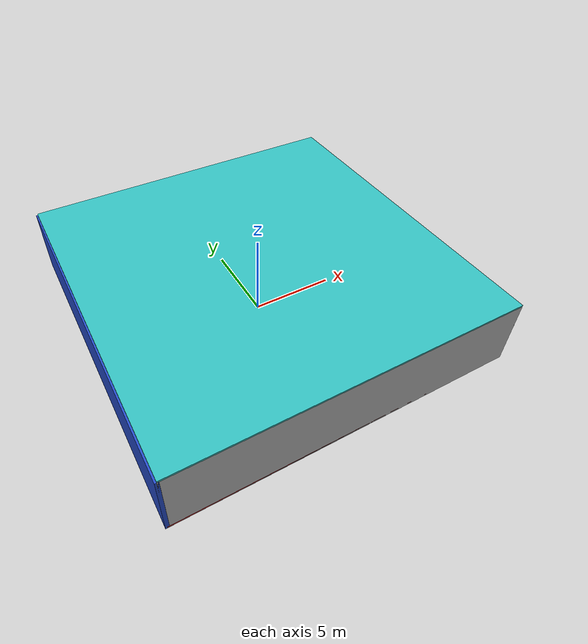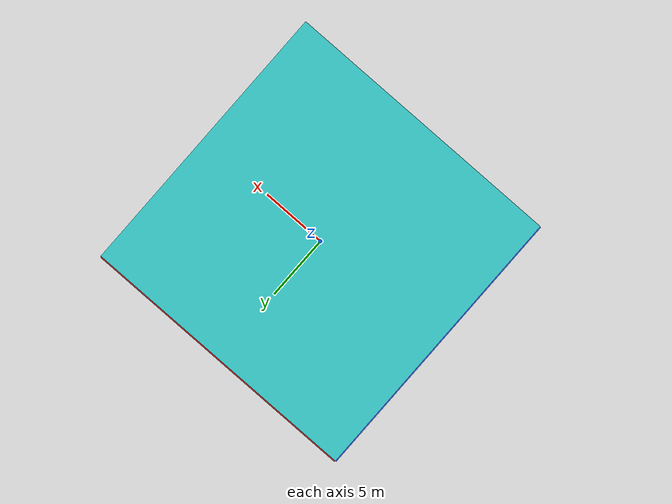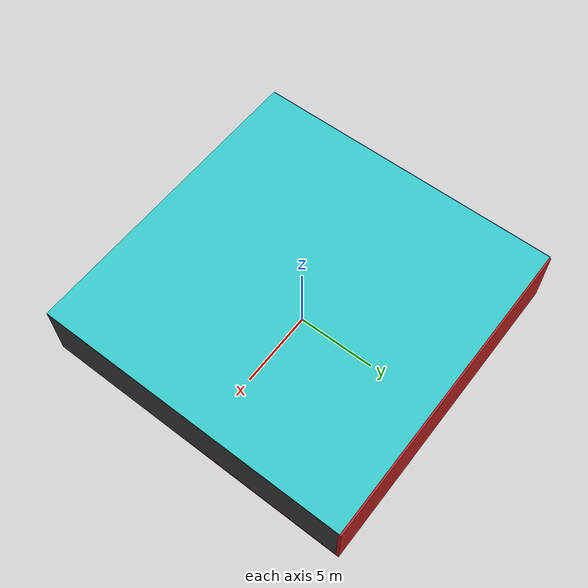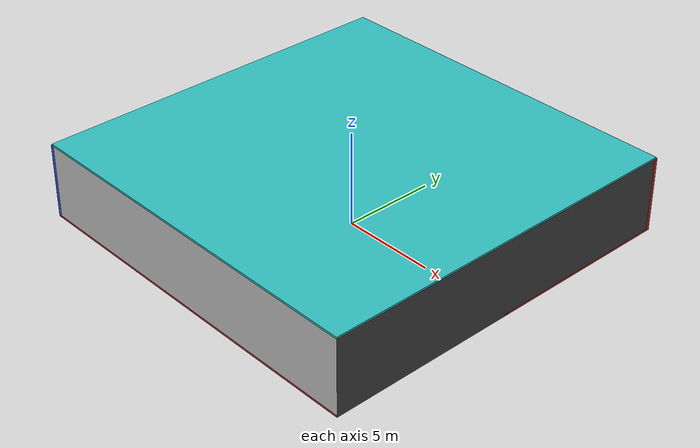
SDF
<sdf version="1.4">
 <world name="default">
  <physics type="ode">
   <max_step_size>0.001</max_step_size>
   <real_time_factor>1</real_time_factor>
   <real_time_update_rate>1000</real_time_update_rate>
   <gravity>0 0 -9.8</gravity>
  </physics>
  <scene><ambient>0.4 0.4 0.4 1</ambient><background>0.7 0.7 0.7 1</background><shadows>1</shadows></scene>
  <model name="Surrounding">
   <static>1</static>
   <link name="Ceiling">
    <collision name="Ceiling_Collision"><geometry><box><size>20 20 0.1</size></box></geometry></collision>
    <visual name="Ceiling_Visual">
     <geometry><box><size>20 20 0.1</size></box></geometry>
     <material>
      <script>
       <uri>file://media/materials/scripts/gazebo.material</uri>
       <name>Gazebo/TurquoiseGlowOutline</name>
      </script>
     </material>
    </visual>
    <pose>0 0 4.05 0 0 0</pose>
   </link>
   <link name="Wall_South">
    <collision name="Wall_South_Collision">
     <geometry><box><size>20 0 4</size></box></geometry>
     <pose>0 0 2 0 -0 0</pose>
    </collision>
    <visual name="Wall_South_Visual">
     <pose>0 0 2 0 -0 0</pose>
     <geometry><box><size>20 0 4</size></box></geometry>
     <material>
      <script><uri>file://media/materials/scripts/gazebo.material</uri><name>Gazebo/LightOff</name></script>
     </material>
    </visual>
    <velocity_decay><linear>0</linear><angular>0</angular></velocity_decay>
    <pose>0 -10 0 0 -0 0</pose>
   </link>
   <link name="Wall_East">
    <collision name="Wall_21_Collision">
     <geometry><box><size>20 0 4</size></box></geometry>
     <pose>0 0 2 0 -0 0</pose>
    </collision>
    <visual name="Wall_21_Visual">
     <pose>0 0 2 0 -0 0</pose>
     <geometry><box><size>20 0 4</size></box></geometry>
     <material>
      <script><uri>file://media/materials/scripts/gazebo.material</uri><name>Gazebo/DarkGrey</name></script>
     </material>
    </visual>
    <velocity_decay><linear>0</linear><angular>0</angular></velocity_decay>
    <pose>10 0 0 0 -0 1.5708</pose>
   </link>
   <link name="Wall_North">
    <collision name="Wall_22_Collision">
     <geometry><box><size>20 0.2 4</size></box></geometry>
     <pose>0 0 2 0 -0 0</pose>
    </collision>
    <visual name="Wall_22_Visual">
     <pose>0 0 2 0 -0 0</pose>
     <geometry><box><size>20 0.2 4</size></box></geometry>
     <material>
      <script><uri>file://media/materials/scripts/gazebo.material</uri><name>Gazebo/RedBright</name></script>
     </material>
    </visual>
    <velocity_decay><linear>0</linear><angular>0</angular></velocity_decay>
    <pose>0 10 0 0 -0 0</pose>
   </link>
   <link name="Wall_West">
    <collision name="Wall_23_Collision">
     <geometry><box><size>20 0.2 4</size></box></geometry>
     <pose>0 0 2 0 -0 0</pose>
    </collision>
    <visual name="Wall_23_Visual">
     <pose>0 0 2 0 -0 0</pose>
     <geometry><box><size>20 0.2 4</size></box></geometry>
     <material>
      <script><uri>file://media/materials/scripts/gazebo.material</uri><name>Gazebo/BlueGlow</name></script>
     </material>
    </visual>
    <velocity_decay><linear>0</linear><angular>0</angular></velocity_decay>
    <pose>-10 0 0 0 0 -1.5708</pose>
   </link>
   <link name="Ground_link">
    <collision name="collision">
     <pose>0 0 .05 0 -0 0</pose>
     <geometry><box><size>20 20 0.1</size></box></geometry>
    </collision>
    <visual name="visual">
     <pose>0 0 .05 0 -0 0</pose>
     <geometry><box><size>20 20 0.1</size></box></geometry>
     <material>
      <script><uri>file://media/materials/scripts/gazebo.material</uri><name>Gazebo/RedBright</name></script>
     </material>
    </visual>
   </link>
   <static>1</static>
  </model>
  <spherical_coordinates>
   <surface_model>EARTH_WGS84</surface_model>
   <latitude_deg>0</latitude_deg>
   <longitude_deg>0</longitude_deg>
   <elevation>0</elevation>
   <heading_deg>0</heading_deg>
  </spherical_coordinates>
  <light name="lightball_0" type="diffuse">
   <diffuse>0.8 0.8 0.8 1</diffuse>
   <specular>0.2 0.2 0.2 1</specular>
   <attenuation>
    <range>100</range>
    <constant>0.7</constant>
    <linear>0.01</linear>
    <quadratic>0.001</quadratic>
   </attenuation>
   <direction>-0.5 0.1 -0.9</direction>
   <pose>6.35803143588 -7.25649762377 3.33235705184 0 0 0</pose>
  </light>
  <light name="lightball_1" type="diffuse">
   <diffuse>0.8 0.8 0.8 1</diffuse>
   <specular>0.2 0.2 0.2 1</specular>
   <attenuation>
    <range>100</range>
    <constant>0.7</constant>
    <linear>0.01</linear>
    <quadratic>0.001</quadratic>
   </attenuation>
   <direction>-0.5 0.1 -0.9</direction>
   <pose>-7.79959777969 -7.27119675504 2.78181161631 0 0 0</pose>
  </light>
  <light name="lightball_2" type="diffuse">
   <diffuse>0.8 0.8 0.8 1</diffuse>
   <specular>0.2 0.2 0.2 1</specular>
   <attenuation>
    <range>100</range>
    <constant>0.7</constant>
    <linear>0.01</linear>
    <quadratic>0.001</quadratic>
   </attenuation>
   <direction>-0.5 0.1 -0.9</direction>
   <pose>7.42743854055 -4.87193935534 2.7922726711 0 0 0</pose>
  </light>
  <light name="lightball_3" type="diffuse">
   <diffuse>0.8 0.8 0.8 1</diffuse>
   <specular>0.2 0.2 0.2 1</specular>
   <attenuation>
    <range>100</range>
    <constant>0.7</constant>
    <linear>0.01</linear>
    <quadratic>0.001</quadratic>
   </attenuation>
   <direction>-0.5 0.1 -0.9</direction>
   <pose>-7.17036219023 -4.53593089289 1.94622397328 0 0 0</pose>
  </light>
  <light name="lightball_4" type="diffuse">
   <diffuse>0.8 0.8 0.8 1</diffuse>
   <specular>0.2 0.2 0.2 1</specular>
   <attenuation>
    <range>100</range>
    <constant>0.7</constant>
    <linear>0.01</linear>
    <quadratic>0.001</quadratic>
   </attenuation>
   <direction>-0.5 0.1 -0.9</direction>
   <pose>5.35514293053 -7.42500125807 1.38976408915 0 0 0</pose>
  </light>
  <light name="lightball_5" type="diffuse">
   <diffuse>0.8 0.8 0.8 1</diffuse>
   <specular>0.2 0.2 0.2 1</specular>
   <attenuation>
    <range>100</range>
    <constant>0.7</constant>
    <linear>0.01</linear>
    <quadratic>0.001</quadratic>
   </attenuation>
   <direction>-0.5 0.1 -0.9</direction>
   <pose>1.38816794665 9.13612125917 2.36623205945 0 0 0</pose>
  </light>
  <light name="lightball_6" type="diffuse">
   <diffuse>0.8 0.8 0.8 1</diffuse>
   <specular>0.2 0.2 0.2 1</specular>
   <attenuation>
    <range>100</range>
    <constant>0.7</constant>
    <linear>0.01</linear>
    <quadratic>0.001</quadratic>
   </attenuation>
   <direction>-0.5 0.1 -0.9</direction>
   <pose>-8.27648875211 -6.0151668293 3.14368736619 0 0 0</pose>
  </light>
  <include><uri>model://table</uri><pose>-6.53515143553 2.10854496986 0 0 0 1.86704628584</pose></include>
  <include>
   <uri>model://construction_cone</uri>
   <pose>-7.32039830155 6.724960577 0 0 0 1.37151793819</pose>
  </include>
  <include>
   <uri>model://textured_shapes</uri>
   <pose>-4.76212582997 -4.94196001231 0 0 0 0.327824523837</pose>
  </include>
  <include>
   <uri>model://robocup_3Dsim_goal</uri>
   <pose>-5.01898798878 0.780584609524 0 0 0 2.50721624027</pose>
  </include>
  <include><uri>model://table</uri><pose>2.32956858389 -1.81002381763 0 0 0 2.70667227224</pose></include>
  <include><uri>model://table</uri><pose>7.5822683659 0.7493806722 0 0 0 0.630067732868</pose></include>
  <include>
   <uri>model://textured_shapes</uri>
   <pose>7.70584105002 7.88835654662 0 0 0 0.202578968738</pose>
  </include>
 </world>
</sdf>

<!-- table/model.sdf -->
<sdf version="1.5">
  <model name="table">
    <static>true</static>
    <link name="link">
      <collision name="surface">
        <pose>0 0 1.0 0 0 0</pose>
        <geometry>
          <box>
            <size>1.5 0.8 0.03</size>
          </box>
        </geometry>
        <surface>
          <friction>
            <ode>
              <mu>0.6</mu>
              <mu2>0.6</mu2>
            </ode>
          </friction>
        </surface>
      </collision>
      <visual name="visual1">
        <pose>0 0 1.0 0 0 0</pose>
        <geometry>
          <box>
            <size>1.5 0.8 0.03</size>
          </box>
        </geometry>
        <material>
          <script>
            <uri>model://media/materials/scripts/gazebo.material</uri>
            <name>Gazebo/Wood</name>
          </script>
        </material>
      </visual>
      <collision name="front_left_leg">
        <pose>0.68 0.38 0.5 0 0 0</pose>
        <geometry>
          <cylinder>
            <radius>0.02</radius>
            <length>1.0</length>
          </cylinder>
        </geometry>
      </collision>
      <visual name="front_left_leg">
        <pose>0.68 0.38 0.5 0 0 0</pose>
        <geometry>
          <cylinder>
            <radius>0.02</radius>
            <length>1.0</length>
          </cylinder>
        </geometry>
        <material>
          <script>
            <uri>model://media/materials/scripts/gazebo.material</uri>
            <name>Gazebo/Grey</name>
          </script>
        </material>
      </visual>
      <collision name="front_right_leg">
        <pose>0.68 -0.38 0.5 0 0 0</pose>
        <geometry>
          <cylinder>
            <radius>0.02</radius>
            <length>1.0</length>
          </cylinder>
        </geometry>
      </collision>
      <visual name="front_right_leg">
        <pose>0.68 -0.38 0.5 0 0 0</pose>
        <geometry>
          <cylinder>
            <radius>0.02</radius>
            <length>1.0</length>
          </cylinder>
        </geometry>
        <material>
          <script>
            <uri>model://media/materials/scripts/gazebo.material</uri>
            <name>Gazebo/Grey</name>
          </script>
        </material>
      </visual>
      <collision name="back_right_leg">
        <pose>-0.68 -0.38 0.5 0 0 0</pose>
        <geometry>
          <cylinder>
            <radius>0.02</radius>
            <length>1.0</length>
          </cylinder>
        </geometry>
      </collision>
      <visual name="back_right_leg">
        <pose>-0.68 -0.38 0.5 0 0 0</pose>
        <geometry>
          <cylinder>
            <radius>0.02</radius>
            <length>1.0</length>
          </cylinder>
        </geometry>
        <material>
          <script>
            <uri>model://media/materials/scripts/gazebo.material</uri>
            <name>Gazebo/Grey</name>
          </script>
        </material>
      </visual>
      <collision name="back_left_leg">
        <pose>-0.68 0.38 0.5 0 0 0</pose>
        <geometry>
          <cylinder>
            <radius>0.02</radius>
            <length>1.0</length>
          </cylinder>
        </geometry>
      </collision>
      <visual name="back_left_leg">
        <pose>-0.68 0.38 0.5 0 0 0</pose>
        <geometry>
          <cylinder>
            <radius>0.02</radius>
            <length>1.0</length>
          </cylinder>
        </geometry>
        <material>
          <script>
            <uri>model://media/materials/scripts/gazebo.material</uri>
            <name>Gazebo/Grey</name>
          </script>
        </material>
      </visual>
    </link>
  </model>
</sdf>

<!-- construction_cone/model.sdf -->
<sdf version="1.5">
  <model name="Construction Cone">
    <link name="link">
      <collision name="collision">
        <geometry>
          <mesh>
            <scale>10 10 10</scale>
            <uri>file://isr-testbed/construction_cone/meshes/construction_cone.dae</uri>
          </mesh>
        </geometry>
      </collision>
      <visual name="visual">
        <geometry>
          <mesh>
            <scale>10 10 10</scale>
            <uri>file://isr-testbed/construction_cone/meshes/construction_cone.dae</uri>
          </mesh>
        </geometry>
      </visual>
    </link>
  </model>
</sdf>

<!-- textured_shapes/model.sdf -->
<sdf version="1.6">
  <model name="textured_shapes">
    <pose>0 0 0.5 0 0 0</pose>
    <link name="box">
      <pose>0 -1.5 0 0 0 0</pose>
      <collision name="collision">
        <geometry>
          <box>
            <size>1 1 1</size>
          </box>
        </geometry>
      </collision>
      <visual name="visual">
        <geometry>
          <box>
            <size>1 1 1</size>
          </box>
        </geometry>
        <material>
          <script>
            <uri>model://../model_source/models/textured_shapes/materials/scripts</uri>
            <uri>model://../model_source/models/textured_shapes/materials/textures</uri>
            <name>TexturedShape/Squares</name>
          </script>
        </material>
      </visual>
    </link>
    <link name="sphere">
      <collision name="collision">
        <geometry>
          <sphere>
            <radius>0.5</radius>
          </sphere>
        </geometry>
      </collision>
      <visual name="visual">
        <geometry>
          <sphere>
            <radius>0.5</radius>
          </sphere>
        </geometry>
        <material>
          <script>
            <uri>model://../model_source/models/textured_shapes/materials/scripts</uri>
            <uri>model://../model_source/models/textured_shapes/materials/textures</uri>
            <name>TexturedShape/Squares</name>
          </script>
        </material>
      </visual>
    </link>
    <link name="cylinder">
      <pose>0 1.5 0 0 0 0</pose>
      <collision name="collision">
        <geometry>
          <cylinder>
            <radius>0.5</radius>
            <length>1</length>
          </cylinder>
        </geometry>
      </collision>
      <visual name="visual">
        <geometry>
          <cylinder>
            <radius>0.5</radius>
            <length>1</length>
          </cylinder>
        </geometry>
        <material>
          <script>
            <uri>model://../model_source/models/textured_shapes/materials/scripts</uri>
            <uri>model://../model_source/models/textured_shapes/materials/textures</uri>
            <name>TexturedShape/Squares</name>
          </script>
        </material>
      </visual>
    </link>
  </model>
</sdf>

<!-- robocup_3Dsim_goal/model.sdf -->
<sdf version="1.5">
  <model name="robocup_3d_goal">
    <static>true</static>
    <link name="left_post">
      <pose>0 1.05 0.45 0 0 0</pose>
      <collision name="collision">
        <geometry>
          <cylinder>
            <radius>0.05</radius>
            <length>0.9</length>
          </cylinder>
        </geometry>
      </collision>
      <visual name="visual">
        <geometry>
          <cylinder>
            <radius>0.05</radius>
            <length>0.9</length>
          </cylinder>
        </geometry>
        <material>
          <script>
            <uri>file://media/materials/scripts/gazebo.material</uri>
            <name>Gazebo/ZincYellow</name>
          </script>
        </material>
      </visual>
    </link>
    <link name="left_support_horiz_lower">
      <pose>0.30 1.05 0.01 0 0 0</pose>
      <collision name="collision">
        <geometry>
          <box>
            <size>0.50 0.02 0.02</size>
          </box>
        </geometry>
      </collision>
      <visual name="visual">
        <geometry>
          <box>
            <size>0.50 0.02 0.02</size>
          </box>
        </geometry>
        <material>
          <script>
            <uri>file://media/materials/scripts/gazebo.material</uri>
            <name>Gazebo/White</name>
          </script>
        </material>
      </visual>
    </link>
    <link name="left_support_horiz_upper">
      <pose>0.30 1.05 0.79 0 0 0</pose>
      <collision name="collision">
        <geometry>
          <box>
            <size>0.50 0.02 0.02</size>
          </box>
        </geometry>
      </collision>
      <visual name="visual">
        <geometry>
          <box>
            <size>0.50 0.02 0.02</size>
          </box>
        </geometry>
        <material>
          <script>
            <uri>file://media/materials/scripts/gazebo.material</uri>
            <name>Gazebo/White</name>
          </script>
        </material>
      </visual>
    </link>
    <link name="left_support_vertical">
      <pose>0.56 1.05 0.4 0 1.5708 0</pose>
      <collision name="collision">
        <geometry>
          <box>
            <size>0.80 0.02 0.02</size>
          </box>
        </geometry>
      </collision>
      <visual name="visual">
        <geometry>
          <box>
            <size>0.80 0.02 0.02</size>
          </box>
        </geometry>
        <material>
          <script>
            <uri>file://media/materials/scripts/gazebo.material</uri>
            <name>Gazebo/White</name>
          </script>
        </material>
      </visual>
    </link>
    <link name="right_support_horiz_lower">
      <pose>0.30 -1.05 0.01 0 0 0</pose>
      <collision name="collision">
        <geometry>
          <box>
            <size>0.50 0.02 0.02</size>
          </box>
        </geometry>
      </collision>
      <visual name="visual">
        <geometry>
          <box>
            <size>0.50 0.02 0.02</size>
          </box>
        </geometry>
        <material>
          <script>
            <uri>file://media/materials/scripts/gazebo.material</uri>
            <name>Gazebo/White</name>
          </script>
        </material>
      </visual>
    </link>
    <link name="right_support_horiz_upper">
      <pose>0.30 -1.05 0.79 0 0 0</pose>
      <collision name="collision">
        <geometry>
          <box>
            <size>0.50 0.02 0.02</size>
          </box>
        </geometry>
      </collision>
      <visual name="visual">
        <geometry>
          <box>
            <size>0.50 0.02 0.02</size>
          </box>
        </geometry>
        <material>
          <script>
            <uri>file://media/materials/scripts/gazebo.material</uri>
            <name>Gazebo/White</name>
          </script>
        </material>
      </visual>
    </link>
    <link name="right_support_vertical">
      <pose>0.56 -1.05 0.4 0 1.5708 0</pose>
      <collision name="collision">
        <geometry>
          <box>
            <size>0.80 0.02 0.02</size>
          </box>
        </geometry>
      </collision>
      <visual name="visual">
        <geometry>
          <box>
            <size>0.80 0.02 0.02</size>
          </box>
        </geometry>
        <material>
          <script>
            <uri>file://media/materials/scripts/gazebo.material</uri>
            <name>Gazebo/White</name>
          </script>
        </material>
      </visual>
    </link>
    <link name="center_support_horiz_lower">
      <pose>0.56 0 0.01 0 1.5708 0</pose>
      <collision name="collision">
        <geometry>
          <box>
            <size>0.02 2.08 0.02</size>
          </box>
        </geometry>
      </collision>
      <visual name="visual">
        <geometry>
          <box>
            <size>0.02 2.08 0.02</size>
          </box>
        </geometry>
        <material>
          <script>
            <uri>file://media/materials/scripts/gazebo.material</uri>
            <name>Gazebo/White</name>
          </script>
        </material>
      </visual>
    </link>
    <link name="center_support_horiz_upper">
      <pose>0.56 0 0.79 0 1.5708 0</pose>
      <collision name="collision">
        <geometry>
          <box>
            <size>0.02 2.08 0.02</size>
          </box>
        </geometry>
      </collision>
      <visual name="visual">
        <geometry>
          <box>
            <size>0.02 2.08 0.02</size>
          </box>
        </geometry>
        <material>
          <script>
            <uri>file://media/materials/scripts/gazebo.material</uri>
            <name>Gazebo/White</name>
          </script>
        </material>
      </visual>
    </link>
    <link name="right_post">
      <pose>0 -1.05 0.45 0 0 0</pose>
      <collision name="collision">
        <geometry>
          <cylinder>
            <radius>0.05</radius>
            <length>0.9</length>
          </cylinder>
        </geometry>
      </collision>
      <visual name="visual">
        <geometry>
          <cylinder>
            <radius>0.05</radius>
            <length>0.9</length>
          </cylinder>
        </geometry>
        <material>
          <script>
            <uri>file://media/materials/scripts/gazebo.material</uri>
            <name>Gazebo/ZincYellow</name>
          </script>
        </material>
      </visual>
    </link>
    <link name="crossbar">
      <pose>0 0 0.85 1.57 1.57 0</pose>
      <collision name="collision">
        <geometry>
          <cylinder>
            <radius>0.05</radius>
            <length>2.0</length>
          </cylinder>
        </geometry>
      </collision>
      <visual name="visual">
        <geometry>
          <cylinder>
            <radius>0.05</radius>
            <length>2.0</length>
          </cylinder>
        </geometry>
        <material>
          <script>
            <uri>file://media/materials/scripts/gazebo.material</uri>
            <name>Gazebo/ZincYellow</name>
          </script>
        </material>
      </visual>
    </link>
    <link name="center_net">
      <pose>0.56 0 0.40 0 0 0</pose>
      <collision name="collision">
        <geometry>
          <box>
            <size>0.01 2.1 0.80</size>
          </box>
        </geometry>
      </collision>
      <visual name="visual">
        <geometry>
          <box>
            <size>0.01 2.1 0.80</size>
          </box>
        </geometry>
        <material>
          <script>
            <uri>model://../model_source/models/robocup09_spl_field/materials/scripts/</uri>
            <uri>model://../model_source/models/robocup09_spl_field/materials/textures/</uri>
            <name>RoboCup/Net</name>
          </script>
        </material>
      </visual>
    </link>
    <link name="left_net">
      <pose>0.30 1.05 0.40 0 0 0</pose>
      <collision name="collision">
        <geometry>
          <box>
            <size>0.50 0.01 0.76</size>
          </box>
        </geometry>
      </collision>
      <visual name="visual">
        <geometry>
          <box>
            <size>0.50 0.01 0.76</size>
          </box>
        </geometry>
        <material>
          <script>
            <uri>model://../model_source/models/robocup09_spl_field/materials/scripts/</uri>
            <uri>model://../model_source/models/robocup09_spl_field/materials/textures/</uri>
            <name>RoboCup/Net</name>
          </script>
        </material>
      </visual>
    </link>
    <link name="right_net">
      <pose>0.30 -1.05 0.40 0 0 0</pose>
      <collision name="collision">
        <geometry>
          <box>
            <size>0.50 0.01 0.76</size>
          </box>
        </geometry>
      </collision>
      <visual name="visual">
        <geometry>
          <box>
            <size>0.50 0.01 0.76</size>
          </box>
        </geometry>
        <material>
          <script>
            <uri>model://../model_source/models/robocup09_spl_field/materials/scripts/</uri>
            <uri>model://../model_source/models/robocup09_spl_field/materials/textures/</uri>
            <name>RoboCup/Net</name>
          </script>
        </material>
      </visual>
    </link>
  </model>
</sdf>
